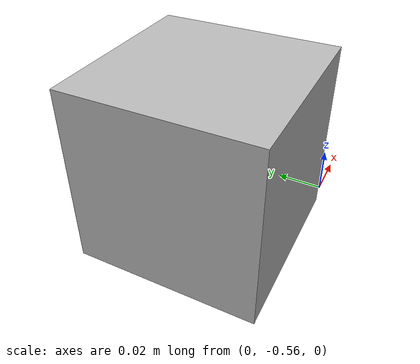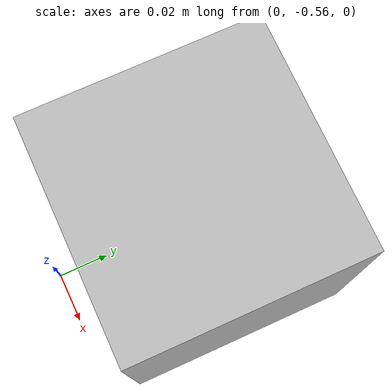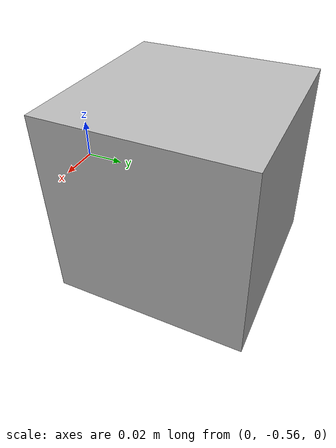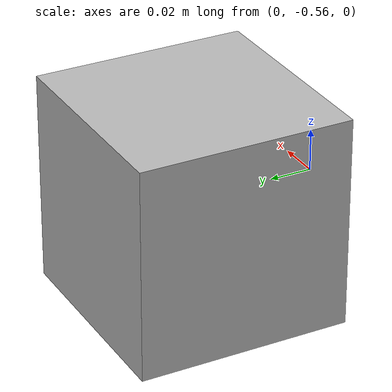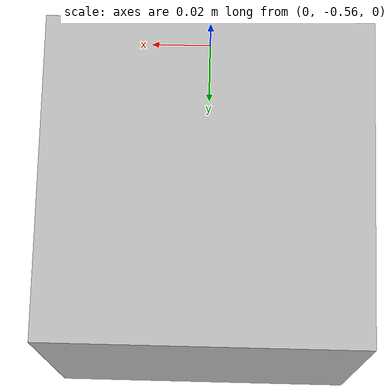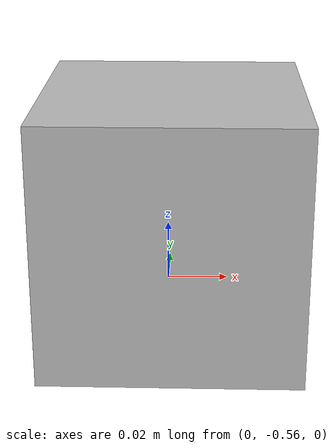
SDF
<sdf version="1.6">
 <world name="default">
  <light name="sun" type="directional">
   <diffuse>0.8 0.8 0.8 1</diffuse>
   <specular>0.2 0.2 0.2 1</specular>
   <attenuation>
    <range>1000</range>
    <constant>0.9</constant>
    <linear>0.01</linear>
    <quadratic>0.001</quadratic>
   </attenuation>
   <direction>-0.5 0.1 -0.9</direction>
  </light>
  <gravity>0 0 0</gravity>
  <magnetic_field>6e-06 2.3e-05 -4.2e-05</magnetic_field>
  <atmosphere type="adiabatic"/>
  <physics name="default_physics" default="0" type="ode">
   <max_step_size>0.001</max_step_size>
   <real_time_factor>1</real_time_factor>
   <real_time_update_rate>1000</real_time_update_rate>
  </physics>
  <scene><ambient>0.4 0.4 0.4 1</ambient><background>0.0 0.0 0.0 1</background><shadows>1</shadows></scene>
  <spherical_coordinates>
   <surface_model>EARTH_WGS84</surface_model>
   <latitude_deg>0</latitude_deg>
   <longitude_deg>0</longitude_deg>
   <elevation>0</elevation>
   <heading_deg>0</heading_deg>
  </spherical_coordinates>
  <model name="dataset_studio_camera">
   <static>1</static>
   <pose>0 -0.5 0 0 -0 1.57</pose>
   <link name="link">
    <inertial>
     <mass>0.1</mass>
     <inertia>
      <ixx>0.000166667</ixx>
      <iyy>0.000166667</iyy>
      <izz>0.000166667</izz>
      <ixy>0</ixy>
      <ixz>0</ixz>
      <iyz>0</iyz>
     </inertia>
    </inertial>
    <collision name="collision"><geometry><box><size>0.1 0.1 0.1</size></box></geometry></collision>
    <visual name="visual"><geometry><box><size>0.1 0.1 0.1</size></box></geometry></visual>
    <sensor name="camera" type="camera">
     <camera name="__default__">
      <horizontal_fov>1.047</horizontal_fov>
      <image><width>1024</width><height>768</height></image>
      <clip><near>0.1</near><far>100</far></clip>
     </camera>
     <always_on>1</always_on>
     <update_rate>30</update_rate>
     <visualize>1</visualize>
     <plugin name="camera_controller" filename="libgazebo_ros_camera.so">
      <alwaysOn>1</alwaysOn>
      <updateRate>0.0</updateRate>
      <cameraName>studio_camera</cameraName>
      <imageTopicName>image_raw</imageTopicName>
      <cameraInfoTopicName>camera_info</cameraInfoTopicName>
      <frameName>camera_link</frameName>
      <hackBaseline>0.07</hackBaseline>
      <distortionK1>0.0</distortionK1>
      <distortionK2>0.0</distortionK2>
      <distortionK3>0.0</distortionK3>
      <distortionT1>0.0</distortionT1>
      <distortionT2>0.0</distortionT2>
     </plugin>
    </sensor>
   </link>
  </model>
  <plugin name="LightDirectionControlPlugin" filename="liblight_direction_control_plugin.so"/>
 </world>
</sdf>
